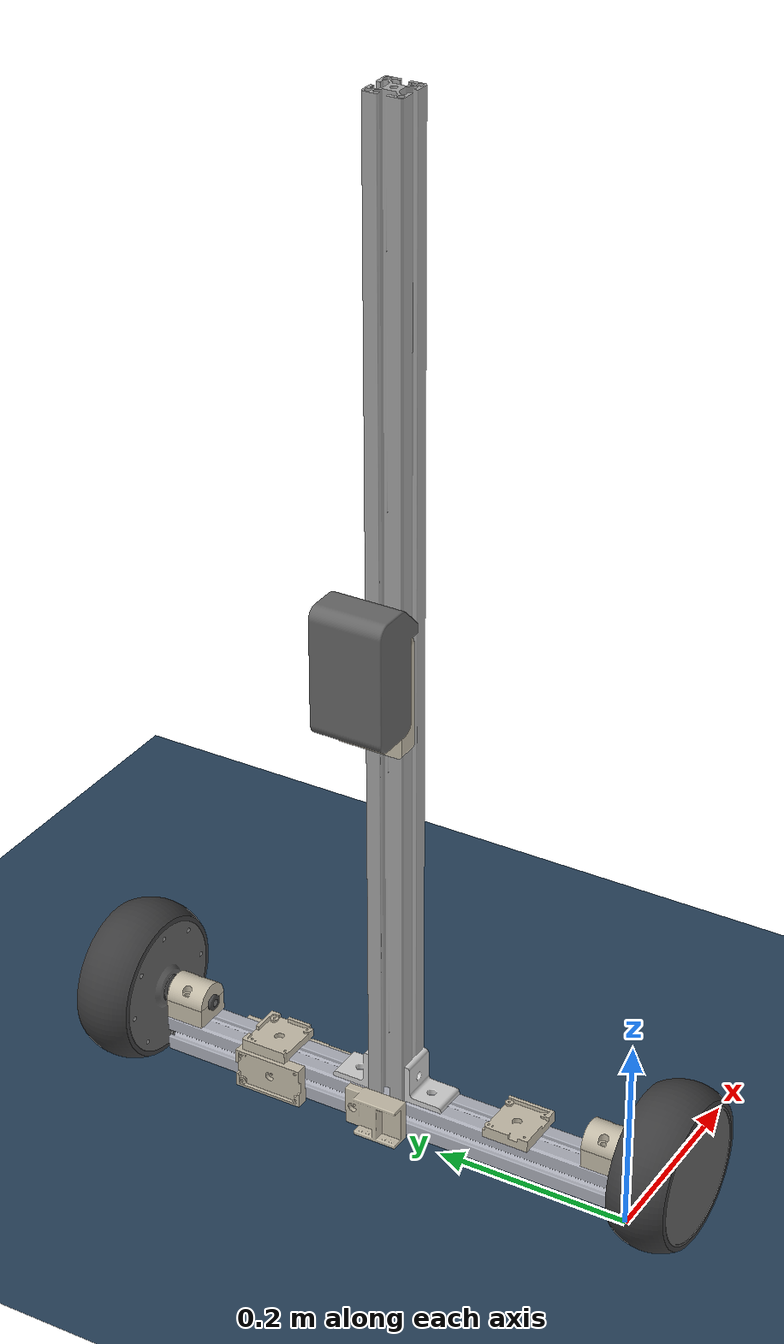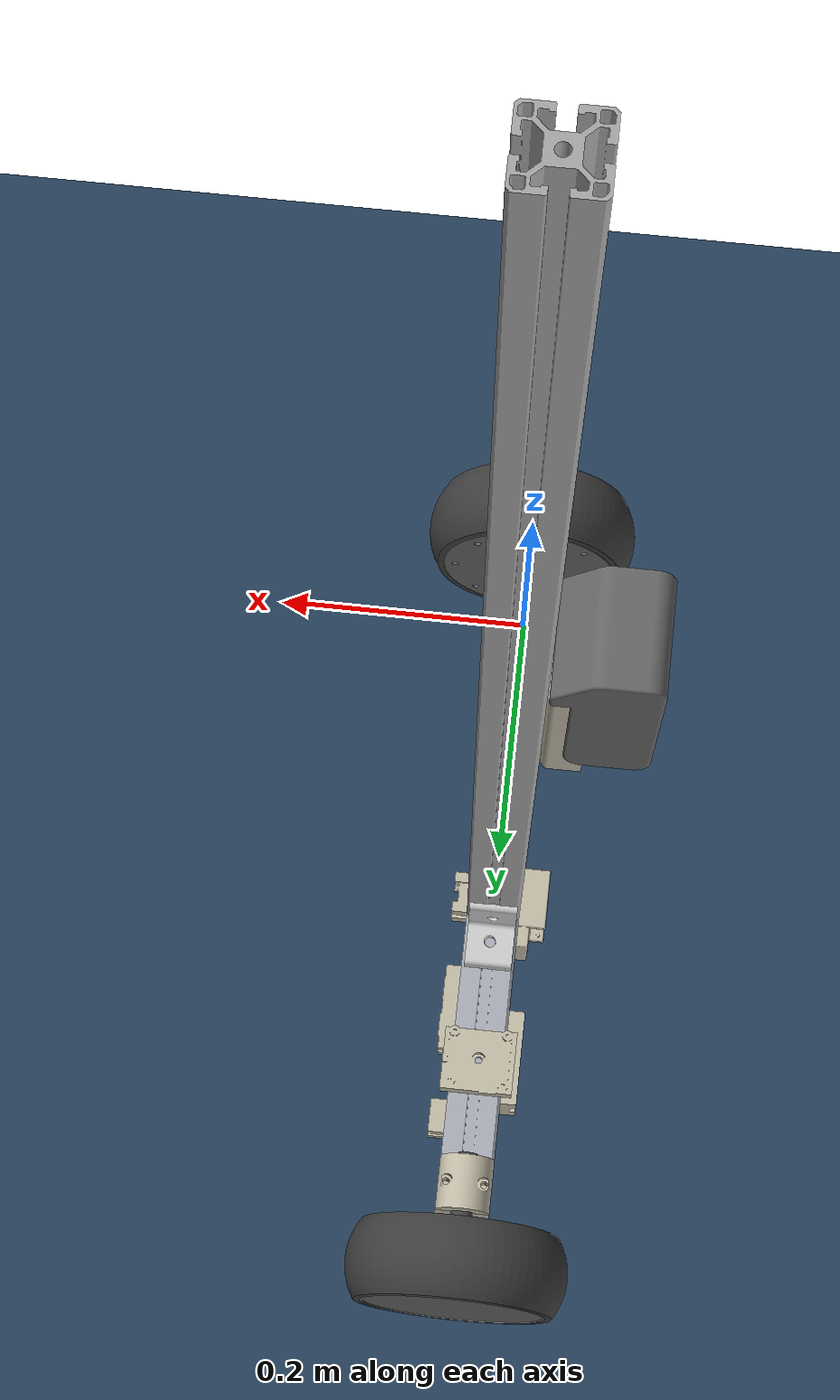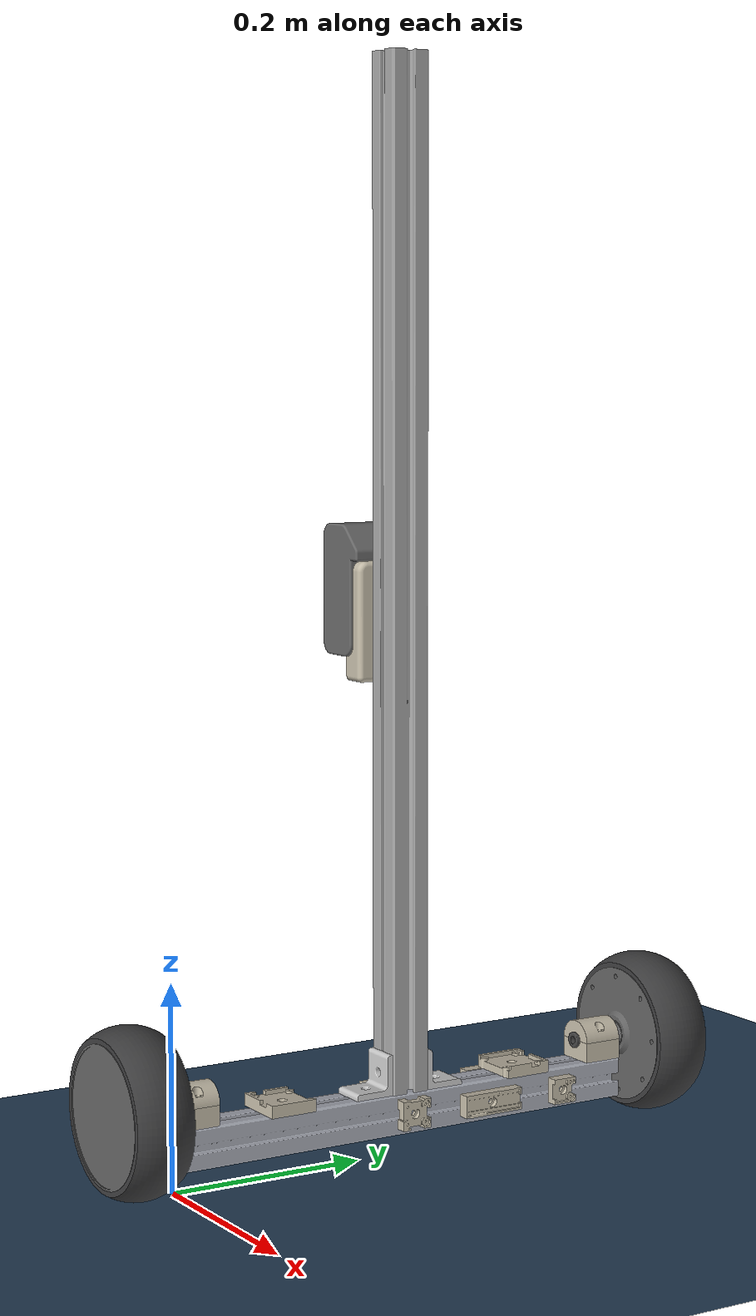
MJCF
<?xml version='1.0' encoding='utf-8'?>
<mujoco model="finn_sim">
  <compiler angle="radian" meshdir="../../../model/finn/assets" autolimits="true" />
  <visual>
    <headlight diffuse="0.6 0.6 0.6" ambient="0.3 0.3 0.3" specular="0 0 0" />
    <rgba haze="0.15 0.25 0.35 1" />
    <global azimuth="160" elevation="-20" />
  </visual>
  <default>
    <default class="finn">
      <joint frictionloss="0.1" armature="0.005" />
      <position kp="50" dampratio="1" />
      <default class="visual">
        <geom type="mesh" contype="0" conaffinity="0" group="2" />
      </default>
      <default class="collision">
        <geom group="3" />
      </default>
    </default>
  </default>
  <worldbody>
    <light pos="0 0 3.5" dir="0 0 -1" directional="true" />
    <geom name="floor" size="0 0 0.05" pos="0 0 0" type="plane" material="groundplane" />
    <body name="base_link" pos="0 0 0.044" quat="1 0 0 0" childclass="finn">
      <freejoint name="root_freejoint" />
      <inertial pos="-0.0125903 0.248567 0.347009" mass="3.99899" fullinertia="0.405206 0.375974 0.034759 0.000116582 0.00733655 -0.00106291" />
      <geom type="mesh" class="visual" pos="3.24608e-05 0.456 0.04" quat="1 -0 -0 0" mesh="right_motor_shaft" material="right_motor_shaft_material" />
      <geom type="mesh" class="collision" pos="3.24608e-05 0.456 0.04" quat="1 -0 -0 0" mesh="right_motor_shaft" material="right_motor_shaft_material" />
      <geom type="mesh" class="visual" pos="6.49924e-05 0.043 0.04" quat="0 0 -0 -1" mesh="left_motor_shaft" material="left_motor_shaft_material" />
      <geom type="mesh" class="collision" pos="6.49924e-05 0.043 0.04" quat="0 0 -0 -1" mesh="left_motor_shaft" material="left_motor_shaft_material" />
      <geom type="mesh" class="visual" pos="-0.000532456 0.393169 0.028" quat="0.707107 0.707107 -0 -0" mesh="motues_bracket" material="motues_bracket_material" />
      <geom type="mesh" class="collision" pos="-0.000532456 0.393169 0.028" quat="0.707107 0.707107 -0 -0" mesh="motues_bracket" material="motues_bracket_material" />
      <geom type="mesh" class="visual" pos="-0.03 0.237079 -0.000467542" quat="0.707107 0 -0.707107 -0" mesh="5b_wago_bracket" material="5b_wago_bracket_material" />
      <geom type="mesh" class="collision" pos="-0.03 0.237079 -0.000467542" quat="0.707107 0 -0.707107 -0" mesh="5b_wago_bracket" material="5b_wago_bracket_material" />
      <geom type="mesh" class="visual" pos="-0.028 0.4096 0.017565" quat="0.5 0.5 -0.5 -0.5" mesh="dcdc_converter_bracket" material="dcdc_converter_bracket_material" />
      <geom type="mesh" class="collision" pos="-0.028 0.4096 0.017565" quat="0.5 0.5 -0.5 -0.5" mesh="dcdc_converter_bracket" material="dcdc_converter_bracket_material" />
      <geom type="mesh" class="visual" pos="-0.000467539 0.105431 0.028125" quat="0 0 0.707107 0.707107" mesh="motues_bracket" material="motues_bracket_material" />
      <geom type="mesh" class="collision" pos="-0.000467539 0.105431 0.028125" quat="0 0 0.707107 0.707107" mesh="motues_bracket" material="motues_bracket_material" />
      <geom type="mesh" class="visual" pos="0.028 0.2368 -0.0100032" quat="0.5 0.5 0.5 0.5" mesh="bno085_bracket" material="bno085_bracket_material" />
      <geom type="mesh" class="collision" pos="0.028 0.2368 -0.0100032" quat="0.5 0.5 0.5 0.5" mesh="bno085_bracket" material="bno085_bracket_material" />
      <geom type="mesh" class="visual" pos="0.028 0.41434 0.00969246" quat="0.707107 -0 0.707107 0" mesh="canpal_bracket" material="canpal_bracket_material" />
      <geom type="mesh" class="collision" pos="0.028 0.41434 0.00969246" quat="0.707107 -0 0.707107 0" mesh="canpal_bracket" material="canpal_bracket_material" />
      <geom type="mesh" class="visual" pos="0.028 0.3395 -0.000467542" quat="0.5 -0.5 0.5 -0.5" mesh="teensy_bracket" material="teensy_bracket_material" />
      <geom type="mesh" class="collision" pos="0.028 0.3395 -0.000467542" quat="0.5 -0.5 0.5 -0.5" mesh="teensy_bracket" material="teensy_bracket_material" />
      <geom type="mesh" class="visual" pos="0 0.1011 -0" quat="0.707107 -0.707107 0 -0" mesh="base_rail" material="base_rail_material" />
      <geom type="mesh" class="collision" pos="0 0.1011 -0" quat="0.707107 -0.707107 0 -0" mesh="base_rail" material="base_rail_material" />
      <geom type="mesh" class="visual" pos="-3.24557e-05 0.2495 0.9184" quat="1 -0 0 0" mesh="mast" material="mast_material" />
      <geom type="mesh" class="collision" pos="-3.24557e-05 0.2495 0.9184" quat="1 -0 0 0" mesh="mast" material="mast_material" />
      <geom type="mesh" class="visual" pos="-0.0587825 0.249968 0.44367" quat="0.5 0.5 0.5 0.5" mesh="battery_mass" material="battery_mass_material" />
      <geom type="mesh" class="collision" pos="-0.0587825 0.249968 0.44367" quat="0.5 0.5 0.5 0.5" mesh="battery_mass" material="battery_mass_material" />
      <geom type="mesh" class="visual" pos="-0.0450325 0.249968 0.469969" quat="0.5 0.5 0.5 0.5" mesh="battery_adapter" material="battery_adapter_material" />
      <geom type="mesh" class="collision" pos="-0.0450325 0.249968 0.469969" quat="0.5 0.5 0.5 0.5" mesh="battery_adapter" material="battery_adapter_material" />
      <geom type="mesh" class="visual" pos="-3.24537e-05 0.229804 0.02" quat="0 0 -0 -1" mesh="mast_bracket" material="mast_bracket_material" />
      <geom type="mesh" class="collision" pos="-3.24537e-05 0.229804 0.02" quat="0 0 -0 -1" mesh="mast_bracket" material="mast_bracket_material" />
      <geom type="mesh" class="visual" pos="-3.24576e-05 0.269196 0.02" quat="1 -0 -0 -0" mesh="mast_bracket" material="mast_bracket_material" />
      <geom type="mesh" class="collision" pos="-3.24576e-05 0.269196 0.02" quat="1 -0 -0 -0" mesh="mast_bracket" material="mast_bracket_material" />
      <geom type="mesh" class="visual" pos="6.49924e-05 -0.0005 0.04" quat="1 -0 0 0" mesh="motor_bk_bottom" material="motor_bk_bottom_material" />
      <geom type="mesh" class="collision" pos="6.49924e-05 -0.0005 0.04" quat="1 -0 0 0" mesh="motor_bk_bottom" material="motor_bk_bottom_material" />
      <geom type="mesh" class="visual" pos="6.49924e-05 -0.0005 0.04" quat="1 -0 -0 0" mesh="motor_bk_top" material="motor_bk_top_material" />
      <geom type="mesh" class="collision" pos="6.49924e-05 -0.0005 0.04" quat="1 -0 -0 0" mesh="motor_bk_top" material="motor_bk_top_material" />
      <geom type="mesh" class="visual" pos="3.24608e-05 0.4595 0.04" quat="1 -0 0 0" mesh="motor_bk_bottom" material="motor_bk_bottom_material" />
      <geom type="mesh" class="collision" pos="3.24608e-05 0.4595 0.04" quat="1 -0 0 0" mesh="motor_bk_bottom" material="motor_bk_bottom_material" />
      <geom type="mesh" class="visual" pos="3.24608e-05 0.4595 0.04" quat="1 -0 0 0" mesh="motor_bk_top" material="motor_bk_top_material" />
      <geom type="mesh" class="collision" pos="3.24608e-05 0.4595 0.04" quat="1 -0 0 0" mesh="motor_bk_top" material="motor_bk_top_material" />
      <site group="3" name="imu" pos="0.02957 0.2495 0.00142679" quat="0.5 0.5 0.5 0.5" />
      <site group="3" name="base" pos="6.49924e-05 0.2495 0.04" quat="0 -0 0.707107 0.707107" />
      <body name="left_wheel" pos="6.49924e-05 -0.009 0.04" quat="0.707107 -0.707107 -0 -0">
        <joint axis="0 0 1" name="left_wheel" damping="0.00410667" armature="0" frictionloss="0.115429" />
        <inertial pos="8.622e-09 -8.622e-09 -0.0329857" mass="2.1" fullinertia="0.00335882 0.00335882 0.00560974 -1e-12 -4.49e-10 4.49e-10" />
        <geom type="mesh" class="visual" pos="-0 0 -0.004" quat="0.707107 -0.707107 0 -0" mesh="motor_hub" material="motor_hub_material" />
        <geom type="mesh" class="visual" pos="-0 0 -0.0045" quat="0.707107 -0.707107 -0 -0" mesh="motor_tire" material="motor_tire_material" />
        <site group="3" name="left_wheel_center" pos="-0 0 -0.033" quat="1 0 0 0" />
        <geom name="left_tire_collision" type="cylinder" class="collision" condim="6" pos="-0 0 -0.033" quat="1 0 0 0" size="0.081 0.0265" material="motor_tire_material" friction="1 0.02 0.002" solref="0.02 1" solimp="0.9 0.95 0.001 0.5 2" />
      </body>
      <body name="right_wheel" pos="3.24608e-05 0.508 0.04" quat="0.645101 0.645101 -0.28956 0.28956">
        <joint axis="0 0 1" name="right_wheel" damping="0.00441399" armature="0" frictionloss="0.126772" />
        <inertial pos="8.622e-09 -8.622e-09 -0.0329857" mass="2.1" fullinertia="0.00335882 0.00335882 0.00560974 -1e-12 -4.49e-10 4.49e-10" />
        <geom type="mesh" class="visual" pos="0 0 -0.004" quat="0.707107 -0.707107 -0 -0" mesh="motor_hub" material="motor_hub_material" />
        <geom type="mesh" class="visual" pos="0 0 -0.0045" quat="0.707107 -0.707107 0 -0" mesh="motor_tire" material="motor_tire_material" />
        <site group="3" name="right_wheel_center" pos="0 0 -0.033" quat="1 0 0 0" />
        <geom name="right_tire_collision" type="cylinder" class="collision" condim="6" pos="0 0 -0.033" quat="1 0 0 0" size="0.081 0.0265" material="motor_tire_material" friction="1 0.02 0.002" solref="0.02 1" solimp="0.9 0.95 0.001 0.5 2" />
      </body>
    </body>
  </worldbody>
  <asset>
    <mesh file="motor_hub.stl" />
    <mesh file="battery_mass.stl" />
    <mesh file="bno085_bracket.stl" />
    <mesh file="battery_adapter.stl" />
    <mesh file="left_motor_shaft.stl" />
    <mesh file="5b_wago_bracket.stl" />
    <mesh file="motor_bk_bottom.stl" />
    <mesh file="teensy_bracket.stl" />
    <mesh file="canpal_bracket.stl" />
    <mesh file="base_rail.stl" />
    <mesh file="dcdc_converter_bracket.stl" />
    <mesh file="right_motor_shaft.stl" />
    <mesh file="motor_bk_top.stl" />
    <mesh file="motor_tire.stl" />
    <mesh file="mast.stl" />
    <mesh file="mast_bracket.stl" />
    <mesh file="motues_bracket.stl" />
    <material name="right_motor_shaft_material" rgba="0.266667 0.266667 0.266667 1" />
    <material name="left_motor_shaft_material" rgba="0.266667 0.266667 0.266667 1" />
    <material name="motues_bracket_material" rgba="0.760784 0.729412 0.654902 1" />
    <material name="5b_wago_bracket_material" rgba="0.760784 0.729412 0.654902 1" />
    <material name="dcdc_converter_bracket_material" rgba="0.760784 0.729412 0.654902 1" />
    <material name="bno085_bracket_material" rgba="0.760784 0.729412 0.654902 1" />
    <material name="canpal_bracket_material" rgba="0.760784 0.729412 0.654902 1" />
    <material name="teensy_bracket_material" rgba="0.760784 0.729412 0.654902 1" />
    <material name="base_rail_material" rgba="0.662745 0.67451 0.713725 1" />
    <material name="mast_material" rgba="0.647059 0.647059 0.647059 1" />
    <material name="battery_mass_material" rgba="0.4 0.4 0.4 1" />
    <material name="battery_adapter_material" rgba="0.760784 0.729412 0.654902 1" />
    <material name="mast_bracket_material" rgba="0.8 0.8 0.8 1" />
    <material name="motor_bk_bottom_material" rgba="0.760784 0.729412 0.654902 1" />
    <material name="motor_bk_top_material" rgba="0.760784 0.729412 0.654902 1" />
    <material name="motor_hub_material" rgba="0.384314 0.384314 0.384314 1" />
    <material name="motor_tire_material" rgba="0.239216 0.239216 0.243137 1" />
    <texture type="skybox" builtin="gradient" rgb1="0.3 0.5 0.7" rgb2="0 0 0" width="512" height="3072" />
    <texture type="2d" name="groundplane" builtin="checker" mark="edge" rgb1="0.2 0.3 0.4" rgb2="0.1 0.2 0.3" markrgb="0.8 0.8 0.8" width="300" height="300" />
    <material name="groundplane" texture="groundplane" texuniform="true" texrepeat="5 5" reflectance="0.2" />
  </asset>
  <actuator>
    <motor name="motor_left_wheel" joint="left_wheel" gear="-1" ctrlrange="-1 1" ctrllimited="true" />
    <motor name="motor_right_wheel" joint="right_wheel" gear="1" ctrlrange="-1 1" ctrllimited="true" />
  </actuator>
  <equality />
  <sensor>
    <gyro name="imu_gyro" site="imu" />
    <accelerometer name="imu_accelerometer" site="imu" />
    <framequat name="imu_quat" objtype="site" objname="imu" />
    <framepos name="base_pos" objtype="site" objname="base" />
    <framequat name="base_quat" objtype="site" objname="base" />
    <jointpos name="wheel_left_pos" joint="left_wheel" />
    <jointvel name="wheel_left_vel" joint="left_wheel" />
    <jointpos name="wheel_right_pos" joint="right_wheel" />
    <jointvel name="wheel_right_vel" joint="right_wheel" />
  </sensor>
</mujoco>
